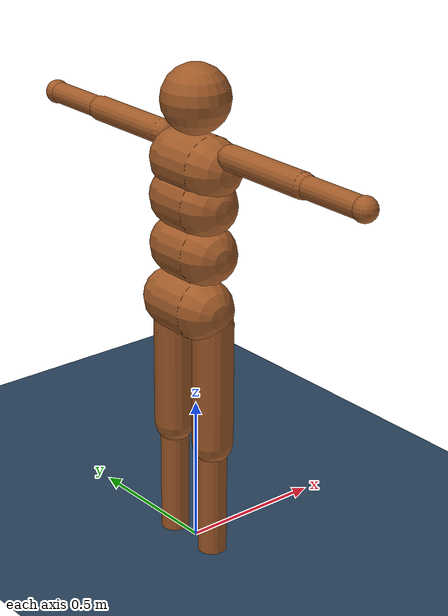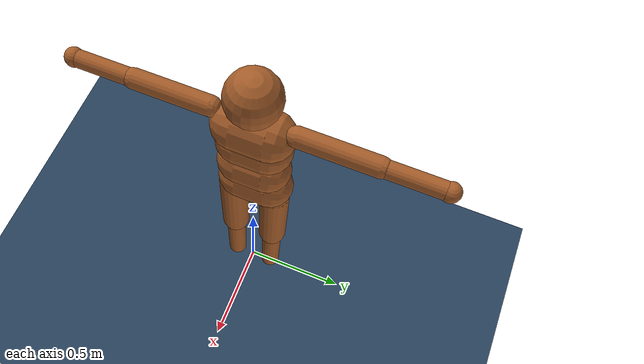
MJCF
<mujoco model="Humanoid">
  <option timestep="0.005" />
  <compiler inertiafromgeom="true" />

  <visual>
    <map force="0.1" zfar="30" />
    <rgba haze="0.15 0.25 0.35 1" />
    <global offwidth="2560" offheight="1440" elevation="-20" azimuth="120" />
  </visual>

  <statistic center="0 0 0.7" extent="2.0" />

  <asset>
    <texture type="skybox" builtin="gradient" rgb1=".3 .5 .7" rgb2="0 0 0" width="32" height="512" />
    <texture name="body" type="cube" builtin="flat" mark="cross" width="128" height="128" rgb1="0.8 0.6 0.4" rgb2="0.8 0.6 0.4" markrgb="1 1 1" />
    <material name="body" texture="body" texuniform="true" rgba="0.8 0.6 .4 1" />
    <texture name="grid" type="2d" builtin="checker" width="512" height="512" rgb1=".1 .2 .3" rgb2=".2 .3 .4" />
    <material name="grid" texture="grid" texrepeat="1 1" texuniform="true" reflectance=".2" />
  </asset>

  <default>
    <general ctrlrange="-1 1" ctrllimited="true" dyntype="filter" dynprm="0.05" />
    <default class="body">
      <geom type="capsule" condim="1" friction=".7" solimp=".9 .99 .003" solref=".015 1" material="body" group="1" />
      <default class="foot">
        <geom condim="6" friction="1 0.05 0.0001" solref="0.025 0.95" solimp="0.85 0.95 0.005" />
      </default>
      <joint type="hinge" damping=".2" stiffness="1" armature=".001" limited="true" solimplimit="0 .99 .01" />
      <default class="mtp">
        <joint pos="0 0 0" axis="0 1 0" range="-20 60" stiffness="20" damping="2" />
      </default>
      <default class="joint_big">
        <joint damping="5" stiffness="10" />
        <default class="hip_x"><joint range="-30 10" /></default>
        <default class="hip_z"><joint range="-60 35" /></default>
        <default class="hip_y"><joint axis="0 1 0" range="-150 20" /></default>
        <default class="joint_big_stiff"><joint stiffness="20" /></default>
      </default>
      <default class="knee"><joint pos="0 0 0" axis="0 -1 0" range="-160 2" /></default>
      <default class="ankle">
        <joint range="-50 50" />
        <default class="ankle_y"><joint pos="0 0 0" axis="0 1 0" stiffness="6" springref="0.2" /></default>
        <default class="ankle_x"><joint pos="0 0 0" stiffness="3" /></default>
      </default>
      <default class="shoulder"><joint range="-85 60" /></default>
      <default class="elbow"><joint range="-100 50" stiffness="0" /></default>
    </default>
  </default>

  <worldbody>
    <geom name="floor" size="0 0 .05" type="plane" material="grid" condim="3" />
    <light name="spotlight" mode="targetbodycom" target="torso" diffuse=".8 .8 .8" specular="0.3 0.3 0.3" pos="0 -6 4" cutoff="30" />
    <light name="top" pos="0 0 2" mode="trackcom" />

    <body name="torso" pos="0 0 1.332" childclass="body">
      <camera name="back" pos="-3 0 1" xyaxes="0 -1 0 1 0 2" mode="trackcom" />
      <camera name="side" pos="0 -3 1" xyaxes="1 0 0 0 1 2" mode="trackcom" />
      <freejoint name="root" />

      <geom name="torso" fromto="0 -.07 0 0 .07 0" size=".104" />
      <geom name="waist_upper" fromto="-.01 -.06 -.12 -.01 .06 -.12" size=".104" />

      <body name="head" pos="0 0 .207">
        <geom name="head" type="sphere" size=".113" />
        <camera name="egocentric" pos=".113 0 0" xyaxes="0 -1 0 .1 0 1" fovy="80" />
      </body>

      <body name="waist_lower" pos="-.01 0 -.283">
        <geom name="waist_lower" fromto="0 -.06 0 0 .06 0" size=".104" />
        <joint name="abdomen_z" pos="0 0 .065" axis="0 0 1" range="-45 45" class="joint_big_stiff" />
        <joint name="abdomen_y" pos="0 0 .065" axis="0 1 0" range="-75 30" class="joint_big" />

        <body name="pelvis" pos="0 0 -.180">
          <joint name="abdomen_x" pos="0 0 .1" axis="1 0 0" range="-35 35" class="joint_big" />
          <geom name="butt" fromto="-.02 -.07 0 -.02 .07 0" size=".104" />

          <body name="thigh_right" pos="0 -.1 -.044">
            <joint name="hip_x_right" axis="1 0 0" class="hip_x" />
            <joint name="hip_z_right" axis="0 0 1" class="hip_z" />
            <joint name="hip_y_right" class="hip_y" />

            <geom name="thigh_right" fromto="0 0 0  0 0 -0.429" size=".068" />
            <body name="shin_right" pos="0 0 -0.429">
              <joint name="knee_right" class="knee" />

              <geom name="shin_right" fromto="0 0 0  0 0 -0.430" size=".048" contype="0" conaffinity="0" />
              <body name="foot_right" pos="0 0 -0.430">
                <joint name="ankle_y_right" class="ankle_y" />
                <joint name="ankle_x_right" class="ankle_x" axis="1 0 .5" />

                <geom name="foot1_right" class="foot" fromto="-.045 -.01 0 .093 -.03 0" size=".025" />
                <geom name="foot2_right" class="foot" fromto="-.045 .01 0 .093 .03 0" size=".025" />
                <body name="toe_right" pos="0.093 0 0">
                  <joint name="mtp_right" class="mtp" />
                  <geom name="toe1_right" class="foot" fromto="0 -.03 0 .060 -.03 0" size=".025" />
                  <geom name="toe2_right" class="foot" fromto="0 .03 0 .060 .03 0" size=".025" />
                </body>
              </body>
            </body>
          </body>

          <body name="thigh_left" pos="0 .1 -.044">
            <joint name="hip_x_left" axis="-1 0 0" class="hip_x" />
            <joint name="hip_z_left" axis="0 0 -1" class="hip_z" />
            <joint name="hip_y_left" class="hip_y" />
            <geom name="thigh_left" fromto="0 0 0  0 0 -0.429" size=".068" />
            <body name="shin_left" pos="0 0 -0.429">
              <joint name="knee_left" class="knee" />
              <geom name="shin_left" fromto="0 0 0  0 0 -0.430" size=".048" contype="0" conaffinity="0" />
              <body name="foot_left" pos="0 0 -0.430">
                <joint name="ankle_y_left" class="ankle_y" />
                <joint name="ankle_x_left" class="ankle_x" axis="-1 0 -.5" />

                <geom name="foot1_left" class="foot" fromto="-.05 -.01 0 .098 -.03 0" size=".027" />
                <geom name="foot2_left" class="foot" fromto="-.05 .01 0 .098 .03 0" size=".027" />
                <body name="toe_left" pos="0.098 0 0">
                  <joint name="mtp_left" class="mtp" />
                  <geom name="toe1_left" class="foot" fromto="0 -.03 0 .064 -.03 0" size=".027" />
                  <geom name="toe2_left" class="foot" fromto="0 .03 0 .064 .03 0" size=".027" />
                </body>
              </body>
            </body>
          </body>
        </body>
      </body>

      <body name="upper_arm_right" pos="0 -.17 .06">
        <joint name="shoulder1_right" axis="1 0 0" range="-90 90" />
        <joint name="shoulder2_right" axis="0 0 1" range="-20 135" />
        <joint name="shoulder3_right" axis="0 1 0" range="-90 90" />

        <geom name="upper_arm_right" fromto="0 0 0  0 -0.325 0" size=".042" />
        <body name="lower_arm_right" pos="0 -0.325 0">
          <joint name="elbow_right" axis="0 0 1" range="0 130" />

          <geom name="lower_arm_right" fromto="0 0 0  0 -0.255 0" size=".036" />
          <body name="hand_right" pos="0 -0.255 0">
            <geom name="hand_right" type="sphere" size=".040" />
          </body>
        </body>
      </body>

      <body name="upper_arm_left" pos="0 .17 .06">
        <joint name="shoulder1_left" axis="-1 0 0" range="-90 90" />
        <joint name="shoulder2_left" axis="0 0 -1" range="-20 135" />
        <joint name="shoulder3_left" axis="0 -1 0" range="-90 90" />
        <geom name="upper_arm_left" fromto="0 0 0  0 0.325 0" size=".042" />
        <body name="lower_arm_left" pos="0 0.325 0">
          <joint name="elbow_left" axis="0 0 -1" range="0 130" />
          <geom name="lower_arm_left" fromto="0 0 0  0 0.255 0" size=".036" />
          <body name="hand_left" pos="0 0.255 0">
            <geom name="hand_left" type="sphere" size=".040" />
          </body>
        </body>
      </body>
    </body>
  </worldbody>

  <contact>
    <exclude body1="waist_lower" body2="thigh_right" />
    <exclude body1="waist_lower" body2="thigh_left" />
  </contact>

  <tendon>
    <fixed name="hamstring_right" limited="true" range="-0.3 2">
      <joint joint="hip_y_right" coef=".5" />
      <joint joint="knee_right" coef="-.5" />
    </fixed>
    <fixed name="hamstring_left" limited="true" range="-0.3 2">
      <joint joint="hip_y_left" coef=".5" />
      <joint joint="knee_left" coef="-.5" />
    </fixed>
  </tendon>

  <actuator>
    <general name="abdomen_z" gear="150" joint="abdomen_z" />
    <general name="abdomen_y" gear="150" joint="abdomen_y" />
    <general name="abdomen_x" gear="250" joint="abdomen_x" />
    <general name="hip_x_right" gear="150" joint="hip_x_right" />
    <general name="hip_z_right" gear="100" joint="hip_z_right" />
    <general name="hip_y_right" gear="300" joint="hip_y_right" />
    <general name="knee_right" gear="250" joint="knee_right" />
    <general name="ankle_y_right" gear="160" joint="ankle_y_right" />
    <general name="ankle_x_right" gear="60" joint="ankle_x_right" />
    <general name="hip_x_left" gear="150" joint="hip_x_left" />
    <general name="hip_z_left" gear="100" joint="hip_z_left" />
    <general name="hip_y_left" gear="300" joint="hip_y_left" />
    <general name="knee_left" gear="250" joint="knee_left" />
    <general name="ankle_y_left" gear="160" joint="ankle_y_left" />
    <general name="ankle_x_left" gear="60" joint="ankle_x_left" />
    <general name="shoulder1_right" gear="40" joint="shoulder1_right" />
    <general name="shoulder2_right" gear="40" joint="shoulder2_right" />
    <general name="elbow_right" gear="40" joint="elbow_right" />
    <general name="shoulder1_left" gear="40" joint="shoulder1_left" />
    <general name="shoulder2_left" gear="40" joint="shoulder2_left" />
    <general name="elbow_left" gear="40" joint="elbow_left" />
  </actuator>

  <keyframe>
    <key name="drop_impact" qpos="0 0 1.35             0.988015 0 0.154359 0             0 0.4 0             -0.25 -0.5 -2.5 -2.65 -0.8 0.56 0             -0.25 -0.5 -2.5 -2.65 -0.8 0.56 0             0 0 0 0             0 0 0 0" />
  </keyframe>
</mujoco>
